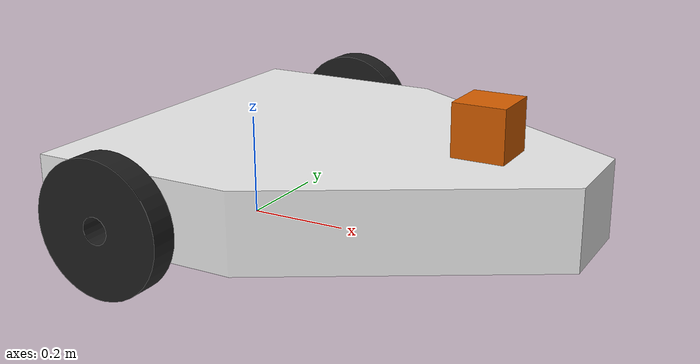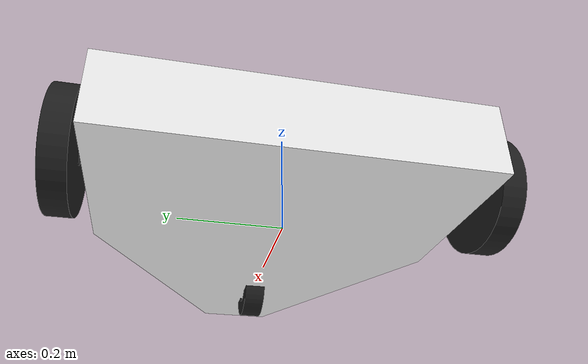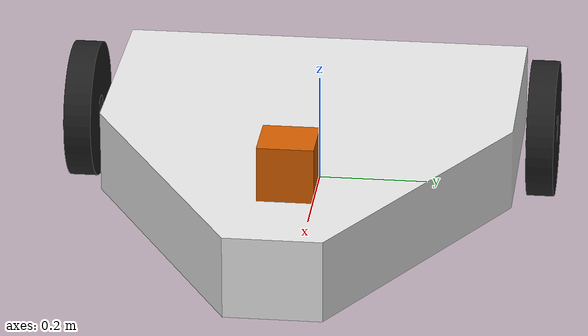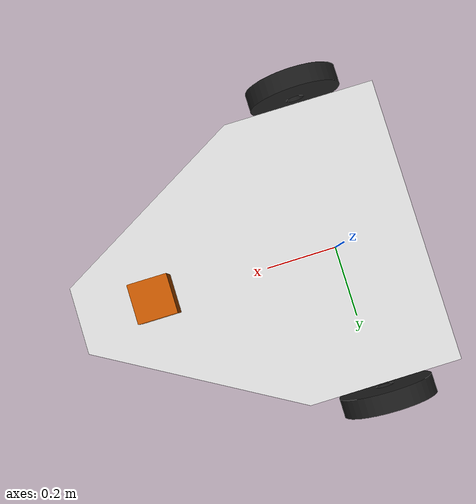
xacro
<?xml version="1.0"?>
<robot name="RobotIPSA" xmlns:xacro="http://www.ros.org/wiki/xacro">
  <xacro:property name="wheelRadius" value="0.12"/>
  <xacro:property name="baseWidth" value="0.45"/>
  <xacro:property name="baseHeight" value="0.10"/>
  <xacro:property name="baseAltitude" value="0.20"/>
  <xacro:property name="camSize" value="0.10"/>

  <xacro:include filename="$(find evry_project_description)/urdf/materials.xacro"/>
  <xacro:include filename="$(find evry_project_description)/urdf/robot.gazebo"/>

  <xacro:macro name="default_origin" params="z">
    <origin xyz="0 0 ${z}" rpy="0 0 0"/>
  </xacro:macro>

  <xacro:macro name="default_inertial" params="mass">
    <inertial>
      <mass value="${mass}"/>
      <inertia ixx="1.0" ixy="0.0" ixz="0.0" iyy="1.0" iyz="0.0" izz="1.0"/>
    </inertial>
  </xacro:macro>

  <link name="base_footprint"/>

  <link name="base_link">
    <visual>
      <geometry>
        <mesh filename="package://evry_project_description/meshes/base.STL" scale="5 5 5"/>
      </geometry>
      <origin xyz="0.035 0 ${baseAltitude}" rpy="0 0 ${pi}"/>
      <material name="white"/>
    </visual>
    <collision>
      <geometry>
        <box size="${baseWidth} ${baseHeight} ${baseAltitude}"/>
      </geometry>
      <xacro:default_origin z="${2*baseAltitude/3}"/>
    </collision>
    <xacro:default_inertial mass="3.0"/>
  </link>

  <joint name="base_footprint_to_base_link" type="fixed">
    <parent link="base_footprint"/>
    <child link="base_link"/>
    <origin rpy="0 0 ${-pi/2}"/>
  </joint>

  <xacro:macro name="wheel" params="prefix reflect">
    <link name="${prefix}_wheel">
      <visual>
        <geometry>
          <mesh filename="package://evry_project_description/meshes/roueAr.STL" scale="5 5 5"/>
        </geometry>
        <material name="black"/>
      </visual>
      <collision>
          <geometry>
              <sphere radius="${wheelRadius}"/>
          </geometry>
          <xacro:default_origin z="0"/>
      </collision>
      <xacro:default_inertial mass="1"/>
    </link>

    <joint name="base_to_${prefix}_wheel" type="fixed">
        <parent link="base_link"/>
        <child link="${prefix}_wheel"/>
        <origin xyz="${reflect*baseWidth/2} 0 ${wheelRadius}" rpy="0 ${pi/2} 0" />
        <axis xyz="0 5 0"/>
    </joint>
  </xacro:macro>
  <xacro:wheel prefix="right" reflect="1.825" />
  <xacro:wheel prefix="left" reflect="-1.955" />

  <link name="front_wheel">
    <visual>
      <geometry>
        <mesh filename="package://evry_project_description/meshes/roueAv.STL" scale="5 5 5"/>
      </geometry>
      <origin xyz="0.05 0 0"/>
      <material name="black"/>
    </visual>
    <collision>
        <geometry>
            <sphere radius="${wheelRadius}"/>
        </geometry>
        <xacro:default_origin z="0"/>
    </collision>
    <xacro:default_inertial mass="1"/>
  </link>

  <joint name="base_link_to_front_wheel" type="fixed">
      <parent link="base_link"/>
      <child link="front_wheel"/>
      <origin xyz="0 0.52 ${wheelRadius}" rpy="0 ${pi/2} 0"/>
      <axis xyz="0 1 0"/>
  </joint>

  <joint name="sonar_front_joint" type="fixed">
      <axis xyz="0 1 0" />
      <origin rpy="0 0 0" xyz="0.5 0 0.25" />
      <parent link="base_footprint"/>
      <child link="base_sonar_front"/>
  </joint>

  <link name="base_sonar_front">
      <visual>
        <origin xyz="0 0 0" rpy="0 0 0"/>
        <geometry>
          <box size="0.1 0.1 0.1"/>
        </geometry>
      </visual>
   </link>

</robot>
